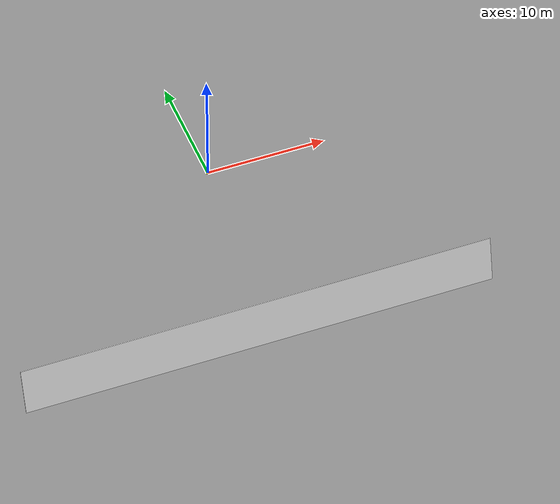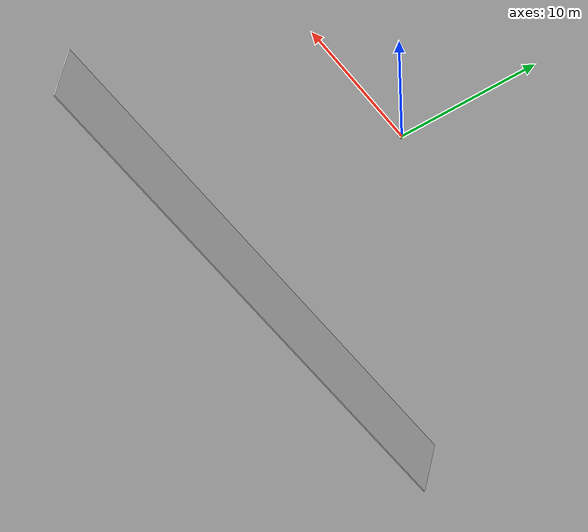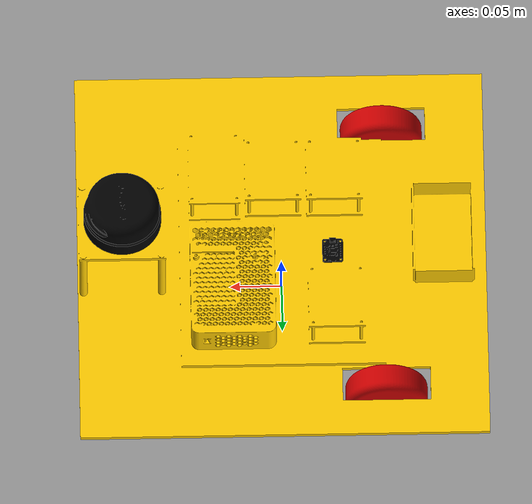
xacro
<?xml version="1.0"?>

<robot name="diff_drive" xmlns:xacro="http://ros.org/wiki/xacro">

    <xacro:include filename="$(find diff_drive_description)/urdf/mechanical.xacro"/>
    <xacro:include filename="$(find diff_drive_description)/urdf/gazebo.xacro"/>

    <xacro:gazebo
    wheel_l_ln="left_wheel"
    wheel_r_ln="right_wheel"
    lidar_ln="rplidar"
    camera_ln_n="camera"
    camera_name="camera"
    imu_ln_n="imu"
    />
    <xacro:mechanical
    base_ln_xyz="0 0 0"
    base_ln_rpy="0 0 0"
    base_ln_mass="2.5"
    wheel_l_ln="left_wheel"
    wheel_r_ln="right_wheel"
    wheel_l_xyz="-0.1 0.145 0.04"
    wheel_r_xyz="-0.1 -0.145 0.04"
    wheel_l_rpy="0 0 0"
    wheel_r_rpy="0 0 0"
    wheel_mass="0.2"
    wheel_rad="0.04"
    caster_ln="caster"
    caster_xyz="0.156 0 0.034"
    caster_rpy="0 0 0"
    caster_mass="0.4"
    lidar_ln="rplidar"
    lidar_xyz="0.16 0 0.155"
    lidar_rpy="0 0 0"
    lidar_mass="0.1"
    camera_ln="camera"
    camera_xyz="0.205 -0.0005 0.105"
    camera_rpy="0 0 0"
    camera_mass="0.1"
    imu_ln="imu"
    imu_xyz="-0.05 0 0.07"
    imu_rpy="0 0 0"
    imu_mass="0.01"
    />

</robot>

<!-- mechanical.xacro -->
<robot xmlns:xacro="http://www.ros.org/wiki/xacro">

    <!-- Sensor models -->
	<xacro:include filename="$(find diff_drive_description)/urdf/sensor.xacro" />

    <xacro:macro
    name="mechanical"
    params="base_ln_xyz base_ln_rpy base_ln_mass wheel_l_ln wheel_r_ln wheel_l_xyz wheel_r_xyz wheel_l_rpy wheel_r_rpy wheel_mass wheel_rad caster_ln caster_xyz caster_rpy caster_mass lidar_ln lidar_xyz lidar_rpy lidar_mass camera_ln camera_xyz camera_rpy camera_mass imu_ln imu_xyz imu_rpy imu_mass" >

	<link name="base_footprint"/>

	<link name='base_frame'>

		<collision>
			<geometry>
				<mesh filename="package://diff_drive_description/meshes/main.STL" scale="1 1 1"/>
			</geometry>
		</collision>

		<visual>
			<geometry>
				<mesh filename="package://diff_drive_description/meshes/main.STL" scale="1 1 1"/>
			</geometry>
			<material name="Gold"/>
		</visual>

		<inertial>
			<origin xyz="-0.1 0 0.1"
					rpy="0.01 0.01 1.54"/>
			<mass value="${base_ln_mass}"/>
			<xacro:box_inertia
				m="${base_ln_mass}"
				l="0.4"
				w="0.4"
				h="0.2"/>
		</inertial>
	</link>

    <link name='${wheel_l_ln}_link'>

		<collision>
			<geometry>
				<mesh filename="package://diff_drive_description/meshes/wheel_80mm.STL" scale="1 1 1"/>
			</geometry>
		</collision>

		<visual>
			<geometry>
				<mesh filename="package://diff_drive_description/meshes/wheel_80mm.STL" scale="1 1 1"/>
			</geometry>
			<material name="Red"/>
		</visual>

		<inertial>
			<origin xyz="0 0 0"
					rpy="1.54 0 0"/>
			<mass value="${wheel_mass}"/>
			<xacro:cylinder_inertia
				m="${wheel_mass}"
                r="${wheel_rad}"
                h="0.015"
            />
		</inertial>

	</link>

    <link name='${wheel_r_ln}_link'>

		<collision>
			<geometry>
				<mesh filename="package://diff_drive_description/meshes/wheel_80mm.STL" scale="1 1 1"/>
			</geometry>
		</collision>

		<visual>
			<geometry>
				<mesh filename="package://diff_drive_description/meshes/wheel_80mm.STL" scale="1 1 1"/>
			</geometry>
			<material name="Red"/>
		</visual>

		<inertial>
			<origin xyz="0 0 0"
					rpy="1.54 0 0"/>
			<mass value="${wheel_mass}"/>
			<xacro:cylinder_inertia
				m="${wheel_mass}"
                r="${wheel_rad}"
                h="0.015"
            />
		</inertial>

	</link>

	<link name="${caster_ln}_link">

		<collision>
			<geometry>
				<mesh filename="package://diff_drive_description/meshes/caster.STL" scale="1 1 1"/>
	  		</geometry>
		</collision>

		<visual>
			<geometry>
				<mesh filename="package://diff_drive_description/meshes/caster.STL" scale="1 1 1"/>
			</geometry>
			<material name="Black" />
		</visual>

		<inertial>
			<origin xyz="${caster_xyz}"
					rpy="${caster_rpy}"/>
			<mass value="${caster_mass}"/>
			<xacro:box_inertia
				m="${caster_mass}"
				l="0.02"
				w="0.02"
				h="0.02"/>
		</inertial>

	</link>

	<link name="caster_wheel_link">

		<collision>
			<origin xyz="0 0 0"
					rpy="0 0 0"/>
			<geometry>
				<mesh filename="package://diff_drive_description/meshes/caster_wheel.stl" scale="1 1 1"/>
				</geometry>
		</collision>

		<visual>
			<origin xyz="0 0 0"
					rpy="0 0 0"/>
			<geometry>
				<mesh filename="package://diff_drive_description/meshes/caster_wheel.stl" scale="1 1 1"/>
			</geometry>
			<material name="White" />
		</visual>

		<inertial>
			<origin xyz="0 0 0"
					rpy="0 0 0"/>
			<mass value="0.4"/>
			<xacro:box_inertia
				m="0.04"
				l="0.04"
				w="0.04"
				h="0.04"/>
		</inertial>

	</link>

    <joint name="base_joint" type="fixed">
		<parent link="base_footprint"/>
		<child link="base_frame"/>
		<origin xyz="${base_ln_xyz}" rpy="${base_ln_rpy}"/>
	</joint>

    <joint name="${wheel_l_ln}_joint" type="continuous">
		<parent link="base_frame"/>
		<child link="${wheel_l_ln}_link"/>
		<origin xyz="${wheel_l_xyz}" rpy="${wheel_l_rpy}"/>
		<axis xyz="0.0 1.0 0.0"/>

	</joint>

    <joint name="${wheel_r_ln}_joint" type="continuous">
		<parent link="base_frame"/>
		<child link="${wheel_r_ln}_link"/>
		<origin xyz="${wheel_r_xyz}" rpy="${wheel_r_rpy}"/>
		<axis xyz="0.0 1.0 0.0"/>

	</joint>

    <joint name="${caster_ln}_joint" type="fixed">
		<parent link="base_frame"/>
		<child link="${caster_ln}_link"/>
		<origin xyz="${caster_xyz}" rpy="${caster_rpy}"/>
	</joint>

	<joint name="caster_wheel_joint" type="continuous">
		<parent link="${caster_ln}_link"/>
		<child link="caster_wheel_link"/>
		<origin xyz="0.0 0 -0.014" rpy="0 0 1.54"/>
	</joint>

	<xacro:sensor
	lidar_ln="${lidar_ln}"
    lidar_xyz="${lidar_xyz}"
    lidar_rpy="${lidar_rpy}"
    lidar_mass="${lidar_mass}"
    camera_ln="${camera_ln}"
    camera_xyz="${camera_xyz}"
    camera_rpy="${camera_rpy}"
    camera_mass="${camera_mass}"
    imu_ln="${imu_ln}"
    imu_xyz="${imu_xyz}"
    imu_rpy="${imu_rpy}"
    imu_mass="${imu_mass}"
    />

</xacro:macro>
</robot>

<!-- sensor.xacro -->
<robot xmlns:xacro="http://www.ros.org/wiki/xacro">

    <material name="Black">
        <color rgba="0.0 0.0 0.0 1.0"/>
    </material>

    <material name="Red">
        <color rgba="0.8 0.0 0.0 1.0"/>
    </material>

    <material name="White">
        <color rgba="1.0 1.0 1.0 1.0"/>
    </material>

    <material name="Gold">
        <color rgba="1.0 0.8 0.0 1.0"/>
    </material>

    <xacro:macro name="cylinder_inertia" params="m r h">

        <inertia
            		ixx = "${m*(3*(r*r+h*h))/12}"
                    ixy = "0"
                    ixz = "0"
                    iyy = "${m*(3*(r*r+h*h))/12}"
                    iyz = "0"
                    izz = "${(m*r*r)/2}"
        />
    </xacro:macro>

    <xacro:macro name="box_inertia" params="m l w h">

        <inertia
            		ixx = "${m*(w*w+h*h)/12}"
                    ixy = "0"
                    ixz = "0"
                    iyy = "${m*(l*l+h*h)/12}"
                    iyz = "0"
                    izz = "${m*(l*l+w*w)/12}"
        />
    </xacro:macro>
    <xacro:macro
    name="sensor"
    params="lidar_ln lidar_xyz lidar_rpy lidar_mass camera_ln camera_xyz camera_rpy camera_mass imu_ln imu_xyz imu_rpy imu_mass" >

	<link name="camera_frame"></link>
    <link name='${camera_ln}_link'>

		<collision>
			<geometry>
				<mesh filename="package://diff_drive_description/meshes/Intel_RealSense_Depth_Camera_D435.stl" scale="1 1 1"/>
			</geometry>
		</collision>

		<visual>
			<geometry>
				<mesh filename="package://diff_drive_description/meshes/Intel_RealSense_Depth_Camera_D435.stl" scale="1 1 1"/>
			</geometry>
			<material name="White"/>
		</visual>

		<inertial>
			<mass value="${camera_mass}"/>
			<xacro:box_inertia
				m="${camera_mass}"
				l="0.4"
				w="0.4"
				h="0.2"/>
		</inertial>
	</link>

    <link name='${lidar_ln}_link'>

		<collision>
			<geometry>
				<mesh filename="package://diff_drive_description/meshes/lidar.STL" scale="1 1 1"/>
			</geometry>
		</collision>

		<visual>
			<geometry>
				<mesh filename="package://diff_drive_description/meshes/lidar.STL" scale="1 1 1"/>
			</geometry>
			<material name="Black"/>
		</visual>

		<inertial>
			<mass value="${lidar_mass}"/>
			<xacro:box_inertia
				m="${lidar_mass}"
				l="0.4"
				w="0.4"
				h="0.2"/>
		</inertial>
	</link>

    <link name='${imu_ln}_link'>

		<collision>
			<geometry>
				<mesh filename="package://diff_drive_description/meshes/imu.stl" scale="1 1 1"/>
			</geometry>
		</collision>

		<visual>
			<geometry>
				<mesh filename="package://diff_drive_description/meshes/imu.stl" scale="1 1 1"/>
			</geometry>
			<material name="Black"/>
		</visual>

		<inertial>
			<mass value="${imu_mass}"/>
			<xacro:box_inertia
				m="${imu_mass}"
				l="0.4"
				w="0.4"
				h="0.2"/>
		</inertial>
	</link>

    <joint name="${camera_ln}_joint" type="fixed">
		<parent link="base_frame"/>
		<child link="${camera_ln}_link"/>
		<origin xyz="${camera_xyz}" rpy="${camera_rpy}"/>
	</joint>

    <joint name="${lidar_ln}_joint" type="fixed">
		<parent link="base_frame"/>
		<child link="${lidar_ln}_link"/>
		<origin xyz="${lidar_xyz}" rpy="${lidar_rpy}"/>
	</joint>

    <joint name="${imu_ln}_joint" type="fixed">
		<parent link="base_frame"/>
		<child link="${imu_ln}_link"/>
		<origin xyz="${imu_xyz}" rpy="${imu_rpy}"/>
	</joint>

	<joint name="camera_frame_joint" type="fixed">
		<origin xyz="0.0 0 0" rpy="-1.54 0.0 -1.54"/>
		<parent link="camera_link"/>
		<child link="camera_frame"/>
	</joint>

    </xacro:macro>
</robot>
